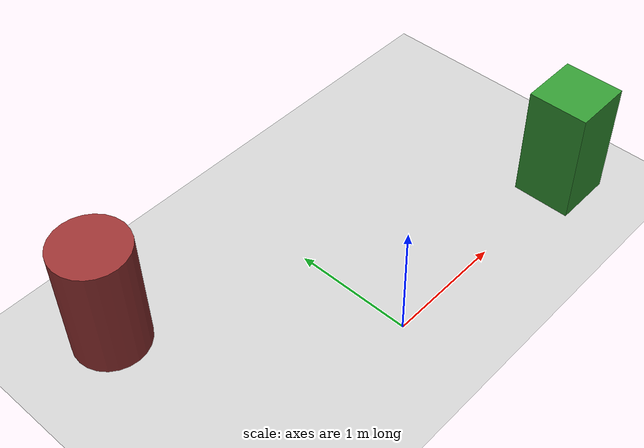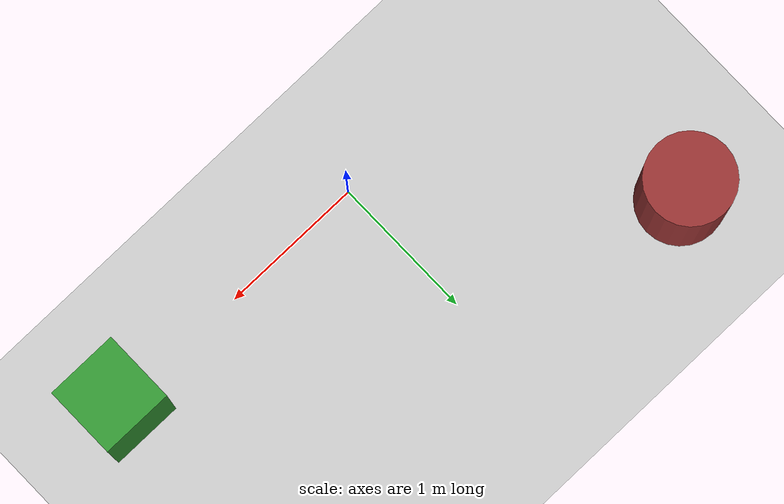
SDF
<?xml version="1.0"?>
<sdf version="1.9">
  <world name="diff_world">
    <plugin filename="gz-sim-physics-system" name="gz::sim::systems::Physics"/>
    <plugin filename="gz-sim-user-commands-system" name="gz::sim::systems::UserCommands"/>
    <plugin filename="gz-sim-scene-broadcaster-system" name="gz::sim::systems::SceneBroadcaster"/>
    <plugin filename="gz-sim-sensors-system" name="gz::sim::systems::Sensors">
      <render_engine>ogre2</render_engine>
    </plugin>

    <light type="directional" name="sun">
      <cast_shadows>true</cast_shadows><pose>0 0 10 0 0 0</pose>
      <diffuse>0.8 0.8 0.8 1</diffuse><specular>0.2 0.2 0.2 1</specular>
      <direction>-0.5 0.1 -0.9</direction>
    </light>

    <model name="ground_plane"><static>true</static><link name="link">
      <collision name="c"><geometry><plane><normal>0 0 1</normal><size>100 100</size></plane></geometry></collision>
      <visual name="v"><geometry><plane><normal>0 0 1</normal><size>100 100</size></plane></geometry>
        <material><ambient>0.8 0.8 0.8 1</ambient><diffuse>0.8 0.8 0.8 1</diffuse></material></visual>
    </link></model>

    <model name="box1"><static>true</static><pose>2 0 0.5 0 0 0</pose><link name="link">
      <collision name="c"><geometry><box><size>0.5 0.5 1</size></box></geometry></collision>
      <visual name="v"><geometry><box><size>0.5 0.5 1</size></box></geometry>
        <material><ambient>0.2 0.6 0.2 1</ambient><diffuse>0.2 0.6 0.2 1</diffuse></material></visual>
    </link></model>

    <model name="cyl1"><static>true</static><pose>-1.5 1.5 0.5 0 0 0</pose><link name="link">
      <collision name="c"><geometry><cylinder><radius>0.3</radius><length>1</length></cylinder></geometry></collision>
      <visual name="v"><geometry><cylinder><radius>0.3</radius><length>1</length></cylinder></geometry>
        <material><ambient>0.6 0.2 0.2 1</ambient><diffuse>0.6 0.2 0.2 1</diffuse></material></visual>
    </link></model>
  </world>
</sdf>
